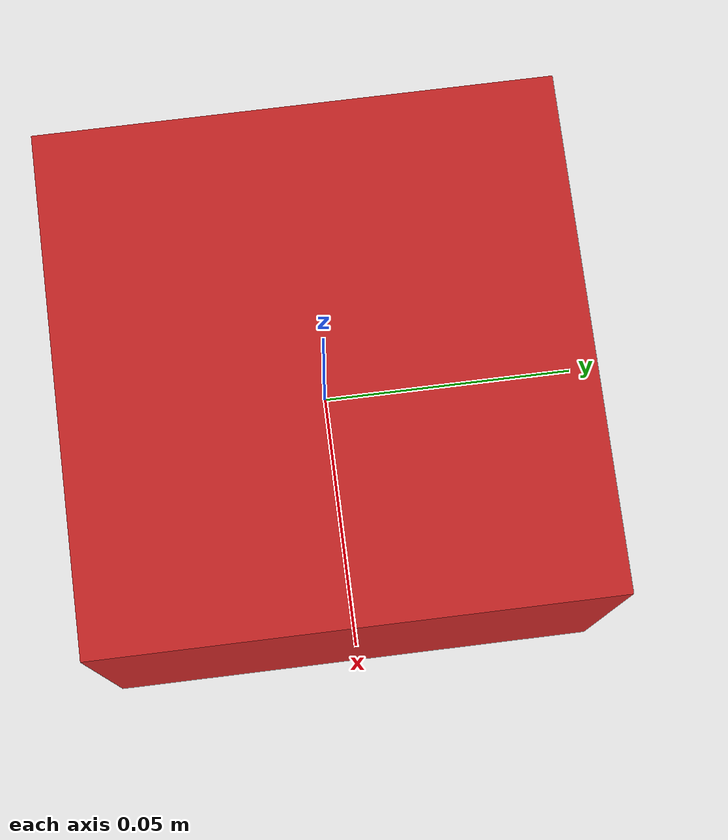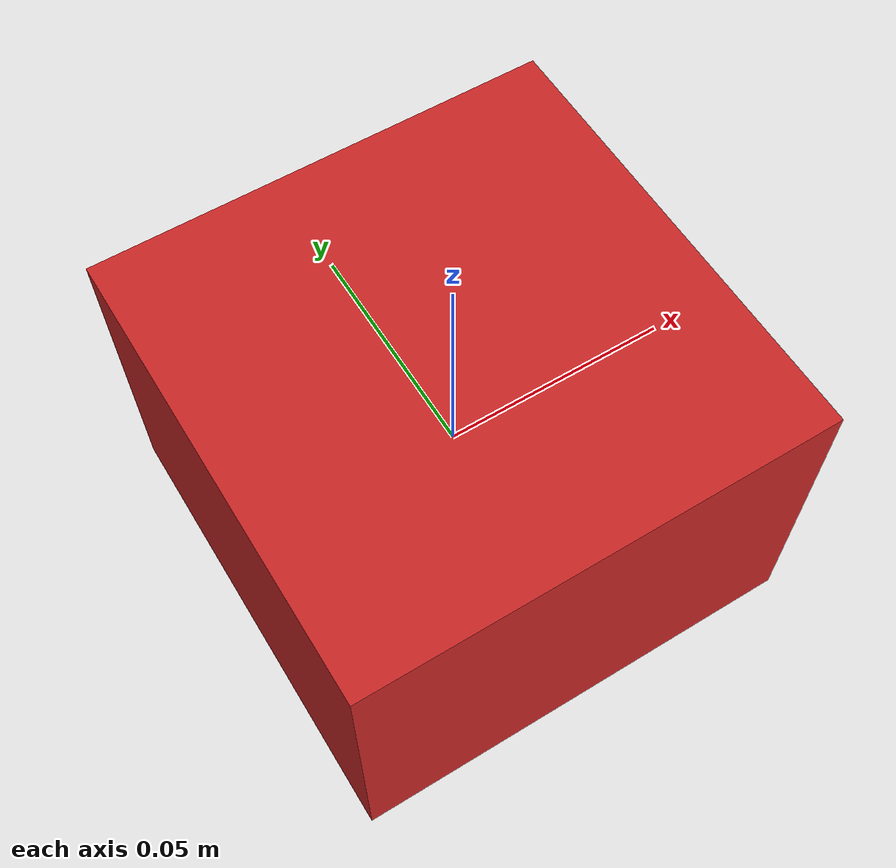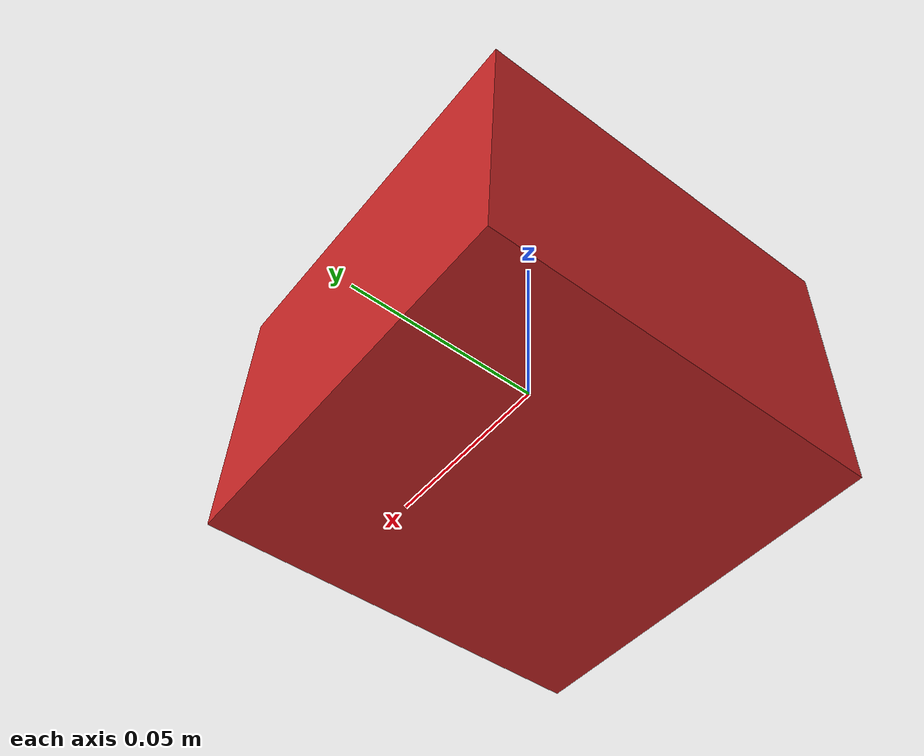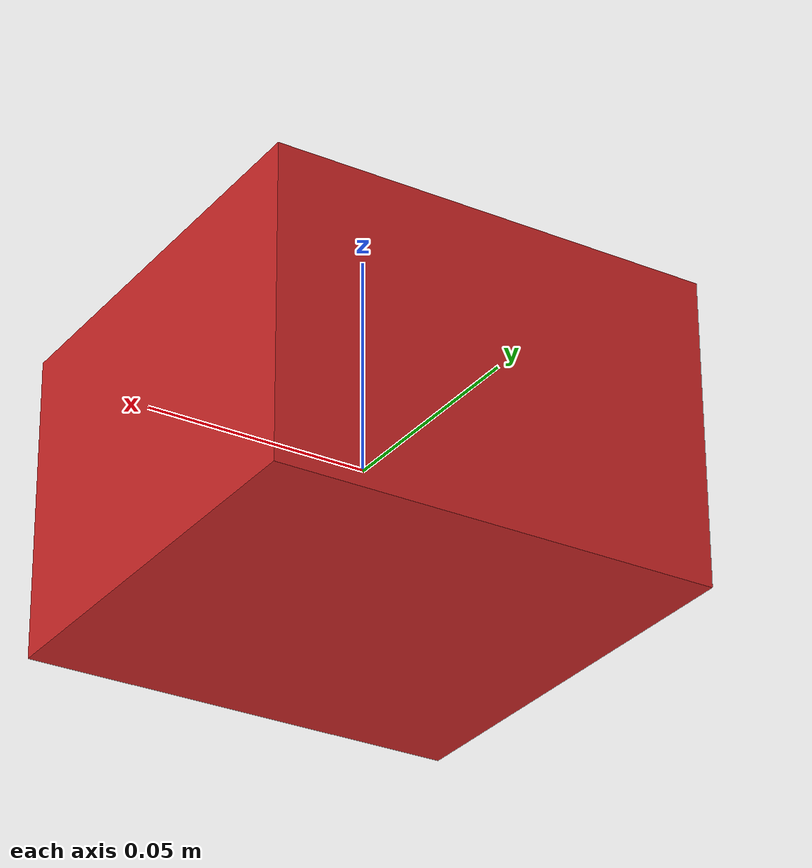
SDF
<sdf version='1.11'>
  <model name='red_cube'>
    <link name='red_cube'>
      <inertial>
        <pose>0 0 0 0 0 0</pose>
        <mass>0.25</mass>
        <inertia>
          <ixx>0.00175</ixx>
          <ixy>0</ixy>
          <ixz>0</ixz>
          <iyy>0.00175</iyy>
          <iyz>0</iyz>
          <izz>0.0025000000000000001</izz>
        </inertia>
      </inertial>
      <collision name='red_cube_collision'>
        <pose>0 0 0 0 0 0</pose>
        <geometry>
          <box>
            <size>0.10000000000000001 0.10000000000000001 0.070000000000000007</size>
          </box>
        </geometry>
        <surface>
          <contact>
            <ode/>
          </contact>
          <friction>
            <ode>
              <mu>100000</mu>
              <mu2>100000</mu2>
            </ode>
          </friction>
        </surface>
      </collision>
      <visual name='red_cube_visual'>
        <pose>0 0 0 0 0 0</pose>
        <geometry>
          <box>
            <size>0.10000000000000001 0.10000000000000001 0.070000000000000007</size>
          </box>
        </geometry>
        <material>
          <script>
            <name>Gazebo/Red</name>
            <uri>file://media/materials/scripts/gazebo.material</uri>
          </script>
        </material>
      </visual>
      <gravity>true</gravity>
    </link>
  </model>
</sdf>
